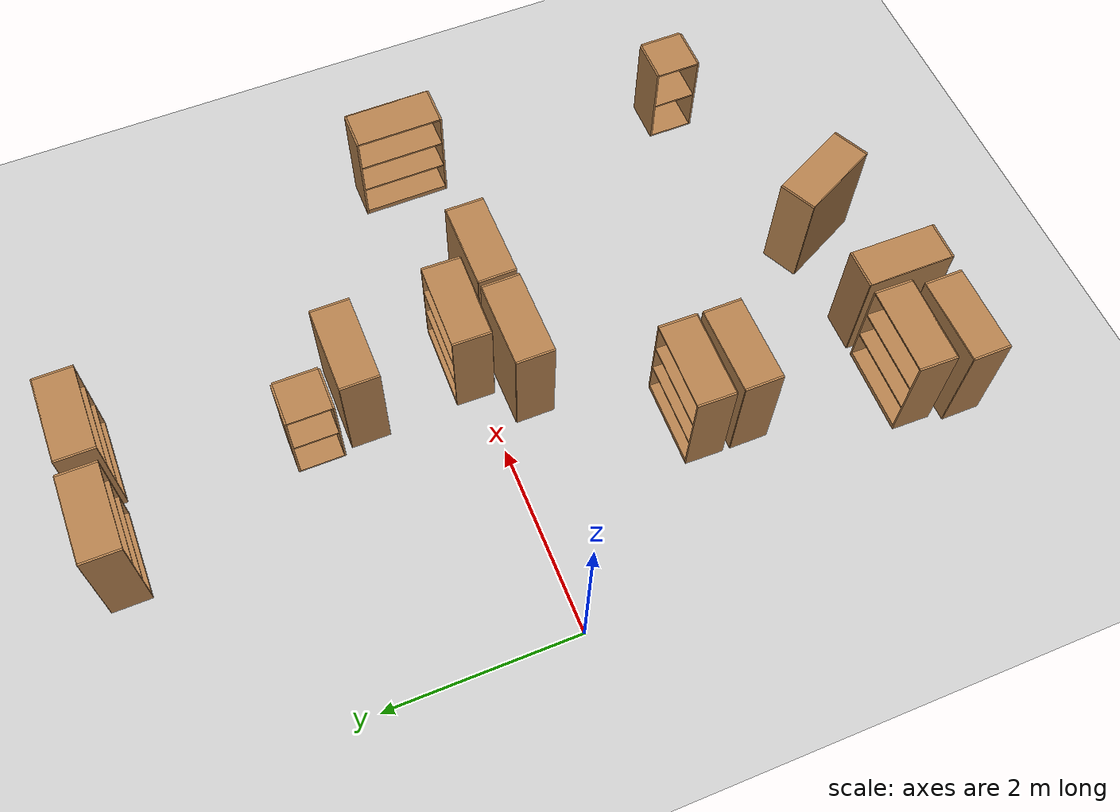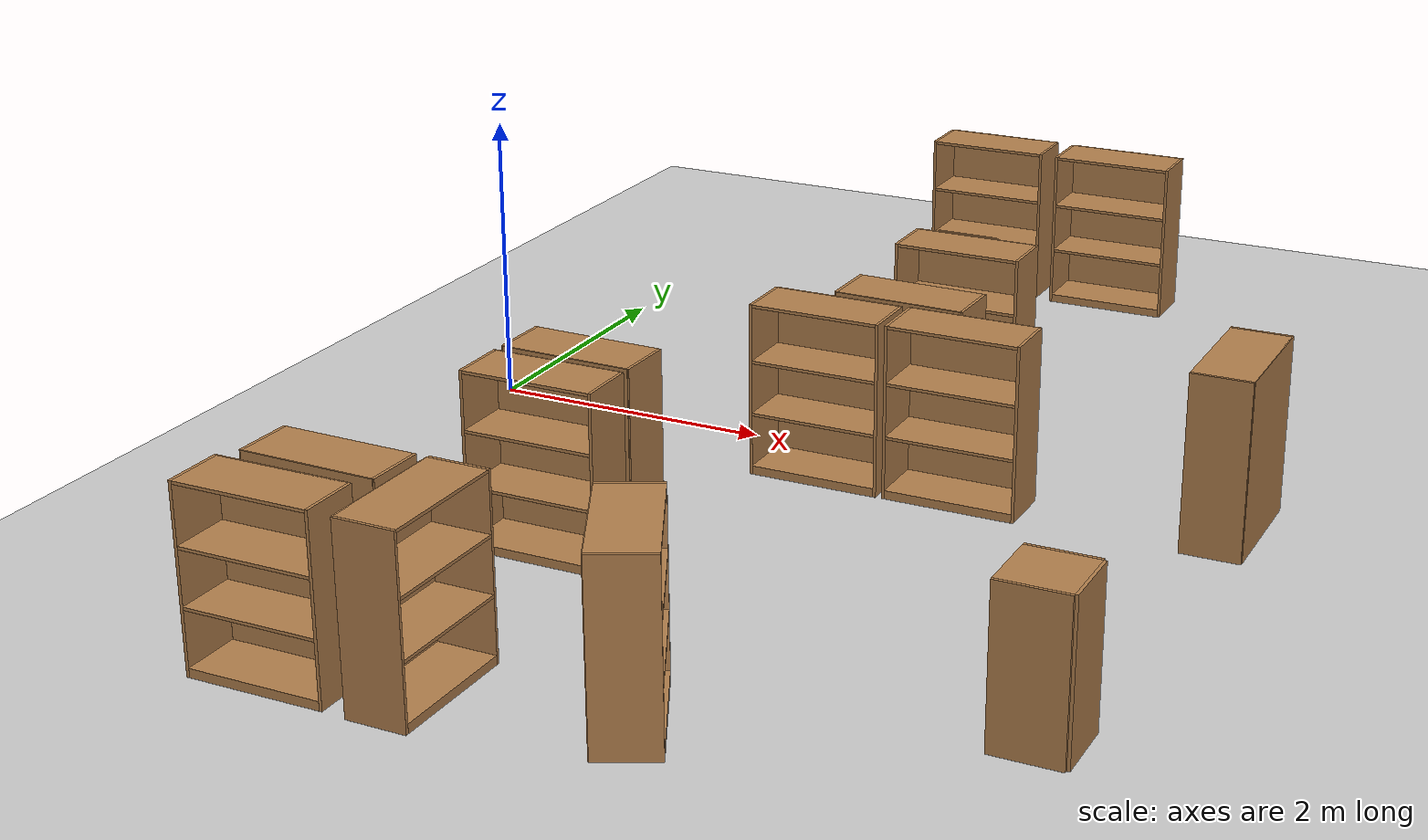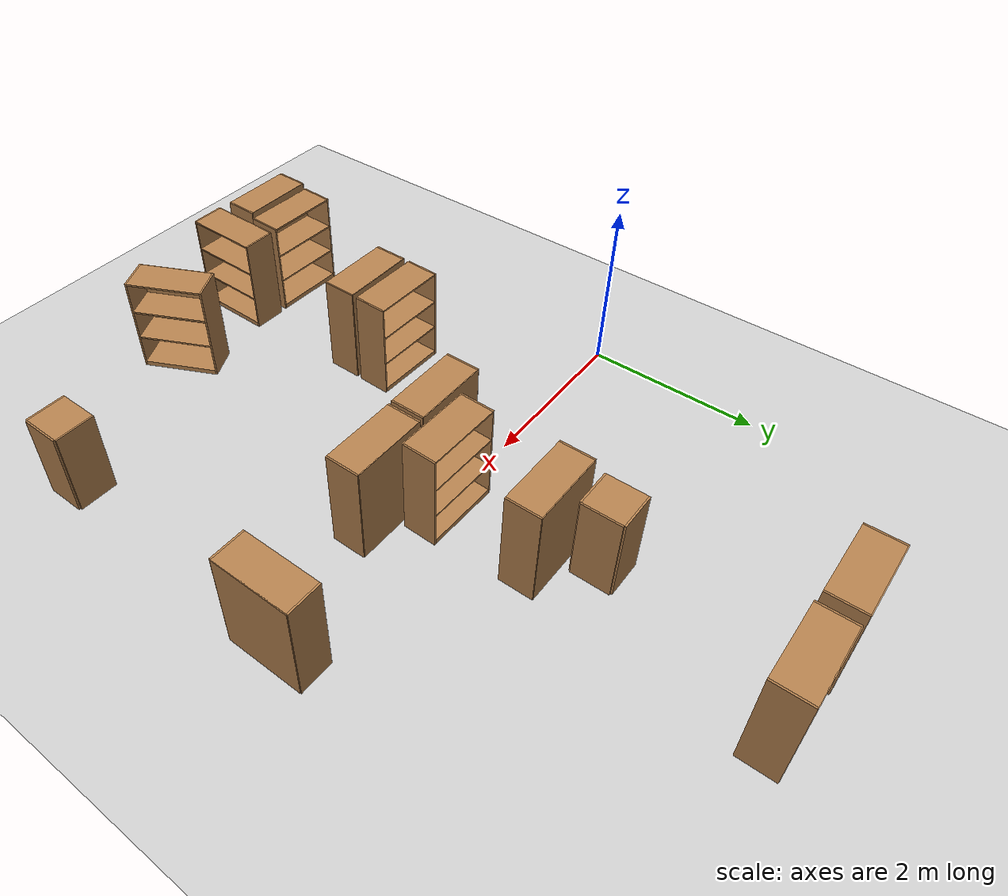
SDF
<sdf version="1.7">
 <world name="default">
  <model name="ground_plane">
   <static>1</static>
   <link name="link">
    <collision name="collision">
     <geometry><plane><normal>0 0 1</normal><size>100 100</size></plane></geometry>
     <surface><friction><ode><mu>100</mu><mu2>50</mu2></ode></friction></surface>
    </collision>
    <visual name="visual">
     <cast_shadows>0</cast_shadows>
     <geometry><plane><normal>0 0 1</normal><size>100 100</size></plane></geometry>
     <material>
      <script><uri>file://media/materials/scripts/gazebo.material</uri><name>Gazebo/Grey</name></script>
     </material>
    </visual>
   </link>
  </model>
  <model name="cabinet">
   <static>1</static>
   <link name="cabinet_bottom_plate">
    <inertial>
     <pose>0 0 -1 0 -0 0</pose>
     <inertia><ixx>2.05</ixx><ixy>0</ixy><ixz>0</ixz><iyy>2.05</iyy><iyz>0</iyz><izz>2.05</izz></inertia>
     <mass>25</mass>
    </inertial>
    <collision name="cabinet_bottom_plate_geom">
     <pose>0 0 0.01 0 -0 0</pose>
     <geometry><box><size>0.45 0.45 0.02</size></box></geometry>
    </collision>
    <visual name="cabinet_bottom_plate_geom_visual">
     <pose>0 0 0.01 0 -0 0</pose>
     <geometry><box><size>0.45 0.45 0.02</size></box></geometry>
     <material>
      <script><uri>file://media/materials/scripts/gazebo.material</uri><name>Gazebo/Wood</name></script>
     </material>
    </visual>
    <collision name="cabinet_bottom_plate_geom_cabinet_back_plate">
     <pose>0.235 0 0.51 0 -0 0</pose>
     <geometry><box><size>0.02 0.45 1.02</size></box></geometry>
    </collision>
    <visual name="cabinet_bottom_plate_geom_cabinet_back_plate_visual">
     <pose>0.235 0 0.51 0 -0 0</pose>
     <geometry><box><size>0.02 0.45 1.02</size></box></geometry>
     <material>
      <script><uri>file://media/materials/scripts/gazebo.material</uri><name>Gazebo/Wood</name></script>
     </material>
    </visual>
    <collision name="cabinet_bottom_plate_geom_cabinet_left_plate">
     <pose>0 0.235 0.51 0 -0 0</pose>
     <geometry><box><size>0.45 0.02 1.02</size></box></geometry>
    </collision>
    <visual name="cabinet_bottom_plate_geom_cabinet_left_plate_visual">
     <pose>0 0.235 0.51 0 -0 0</pose>
     <geometry><box><size>0.45 0.02 1.02</size></box></geometry>
     <material>
      <script><uri>file://media/materials/scripts/gazebo.material</uri><name>Gazebo/Wood</name></script>
     </material>
    </visual>
    <collision name="cabinet_bottom_plate_geom_cabinet_middle_plate">
     <pose>0 0 0.51 0 -0 0</pose>
     <geometry><box><size>0.45 0.45 0.02</size></box></geometry>
    </collision>
    <visual name="cabinet_bottom_plate_geom_cabinet_middle_plate_visual">
     <pose>0 0 0.51 0 -0 0</pose>
     <geometry><box><size>0.45 0.45 0.02</size></box></geometry>
     <material>
      <script><uri>file://media/materials/scripts/gazebo.material</uri><name>Gazebo/Wood</name></script>
     </material>
    </visual>
    <collision name="cabinet_bottom_plate_geom_cabinet_right_plate">
     <pose>0 -0.235 0.51 0 -0 0</pose>
     <geometry><box><size>0.45 0.02 1.02</size></box></geometry>
    </collision>
    <visual name="cabinet_bottom_plate_geom_cabinet_right_plate_visual">
     <pose>0 -0.235 0.51 0 -0 0</pose>
     <geometry><box><size>0.45 0.02 1.02</size></box></geometry>
     <material>
      <script><uri>file://media/materials/scripts/gazebo.material</uri><name>Gazebo/Wood</name></script>
     </material>
    </visual>
    <collision name="cabinet_bottom_plate_geom_cabinet_top_plate">
     <pose>0 0 1.01 0 -0 0</pose>
     <geometry><box><size>0.45 0.45 0.02</size></box></geometry>
    </collision>
    <visual name="cabinet_bottom_plate_geom_cabinet_top_plate_visual">
     <pose>0 0 1.01 0 -0 0</pose>
     <geometry><box><size>0.45 0.45 0.02</size></box></geometry>
     <material>
      <script><uri>file://media/materials/scripts/gazebo.material</uri><name>Gazebo/Wood</name></script>
     </material>
    </visual>
   </link>
   <pose>5.2553 -3.1844 0 0 -0 0</pose>
  </model>
  <model name="bookshelf">
   <static>1</static>
   <link name="link">
    <inertial><mass>1</mass></inertial>
    <collision name="back">
     <pose>0 0.005 0.6 0 -0 0</pose>
     <geometry><box><size>0.9 0.01 1.2</size></box></geometry>
    </collision>
    <visual name="visual1">
     <pose>0 0.005 0.6 0 -0 0</pose>
     <geometry><box><size>0.9 0.01 1.2</size></box></geometry>
     <material>
      <script><uri>file://media/materials/scripts/gazebo.material</uri><name>Gazebo/Wood</name></script>
     </material>
    </visual>
    <collision name="left_side">
     <pose>0.45 -0.195 0.6 0 -0 0</pose>
     <geometry><box><size>0.02 0.4 1.2</size></box></geometry>
    </collision>
    <visual name="visual2">
     <pose>0.45 -0.195 0.6 0 -0 0</pose>
     <geometry><box><size>0.02 0.4 1.2</size></box></geometry>
     <material>
      <script><uri>file://media/materials/scripts/gazebo.material</uri><name>Gazebo/Wood</name></script>
     </material>
    </visual>
    <collision name="right_side">
     <pose>-0.45 -0.195 0.6 0 -0 0</pose>
     <geometry><box><size>0.02 0.4 1.2</size></box></geometry>
    </collision>
    <visual name="visual3">
     <pose>-0.45 -0.195 0.6 0 -0 0</pose>
     <geometry><box><size>0.02 0.4 1.2</size></box></geometry>
     <material>
      <script><uri>file://media/materials/scripts/gazebo.material</uri><name>Gazebo/Wood</name></script>
     </material>
    </visual>
    <collision name="bottom">
     <pose>0 -0.195 0.03 0 -0 0</pose>
     <geometry><box><size>0.88 0.4 0.06</size></box></geometry>
    </collision>
    <visual name="visual4">
     <pose>0 -0.195 0.03 0 -0 0</pose>
     <geometry><box><size>0.88 0.4 0.06</size></box></geometry>
     <material>
      <script><uri>file://media/materials/scripts/gazebo.material</uri><name>Gazebo/Wood</name></script>
     </material>
    </visual>
    <collision name="top">
     <pose>0 -0.195 1.19 0 -0 0</pose>
     <geometry><box><size>0.88 0.4 0.02</size></box></geometry>
    </collision>
    <visual name="visual5">
     <pose>0 -0.195 1.19 0 -0 0</pose>
     <geometry><box><size>0.88 0.4 0.02</size></box></geometry>
     <material>
      <script><uri>file://media/materials/scripts/gazebo.material</uri><name>Gazebo/Wood</name></script>
     </material>
    </visual>
    <collision name="low_shelf">
     <pose>0 -0.195 0.43 0 -0 0</pose>
     <geometry><box><size>0.88 0.4 0.02</size></box></geometry>
    </collision>
    <visual name="visual6">
     <pose>0 -0.195 0.43 0 -0 0</pose>
     <geometry><box><size>0.88 0.4 0.02</size></box></geometry>
     <material>
      <script><uri>file://media/materials/scripts/gazebo.material</uri><name>Gazebo/Wood</name></script>
     </material>
    </visual>
    <collision name="high_shelf">
     <pose>0 -0.195 0.8 0 -0 0</pose>
     <geometry><box><size>0.88 0.4 0.02</size></box></geometry>
    </collision>
    <visual name="visual7">
     <pose>0 -0.195 0.8 0 -0 0</pose>
     <geometry><box><size>0.88 0.4 0.02</size></box></geometry>
     <material>
      <script><uri>file://media/materials/scripts/gazebo.material</uri><name>Gazebo/Wood</name></script>
     </material>
    </visual>
   </link>
   <pose>1.66773 -2.0747 0 0 -0 0</pose>
  </model>
  <model name="bookshelf_1">
   <static>1</static>
   <link name="link">
    <inertial><mass>1</mass></inertial>
    <collision name="back">
     <pose>0 0.005 0.6 0 -0 0</pose>
     <geometry><box><size>0.9 0.01 1.2</size></box></geometry>
    </collision>
    <visual name="visual1">
     <pose>0 0.005 0.6 0 -0 0</pose>
     <geometry><box><size>0.9 0.01 1.2</size></box></geometry>
     <material>
      <script><uri>file://media/materials/scripts/gazebo.material</uri><name>Gazebo/Wood</name></script>
     </material>
    </visual>
    <collision name="left_side">
     <pose>0.45 -0.195 0.6 0 -0 0</pose>
     <geometry><box><size>0.02 0.4 1.2</size></box></geometry>
    </collision>
    <visual name="visual2">
     <pose>0.45 -0.195 0.6 0 -0 0</pose>
     <geometry><box><size>0.02 0.4 1.2</size></box></geometry>
     <material>
      <script><uri>file://media/materials/scripts/gazebo.material</uri><name>Gazebo/Wood</name></script>
     </material>
    </visual>
    <collision name="right_side">
     <pose>-0.45 -0.195 0.6 0 -0 0</pose>
     <geometry><box><size>0.02 0.4 1.2</size></box></geometry>
    </collision>
    <visual name="visual3">
     <pose>-0.45 -0.195 0.6 0 -0 0</pose>
     <geometry><box><size>0.02 0.4 1.2</size></box></geometry>
     <material>
      <script><uri>file://media/materials/scripts/gazebo.material</uri><name>Gazebo/Wood</name></script>
     </material>
    </visual>
    <collision name="bottom">
     <pose>0 -0.195 0.03 0 -0 0</pose>
     <geometry><box><size>0.88 0.4 0.06</size></box></geometry>
    </collision>
    <visual name="visual4">
     <pose>0 -0.195 0.03 0 -0 0</pose>
     <geometry><box><size>0.88 0.4 0.06</size></box></geometry>
     <material>
      <script><uri>file://media/materials/scripts/gazebo.material</uri><name>Gazebo/Wood</name></script>
     </material>
    </visual>
    <collision name="top">
     <pose>0 -0.195 1.19 0 -0 0</pose>
     <geometry><box><size>0.88 0.4 0.02</size></box></geometry>
    </collision>
    <visual name="visual5">
     <pose>0 -0.195 1.19 0 -0 0</pose>
     <geometry><box><size>0.88 0.4 0.02</size></box></geometry>
     <material>
      <script><uri>file://media/materials/scripts/gazebo.material</uri><name>Gazebo/Wood</name></script>
     </material>
    </visual>
    <collision name="low_shelf">
     <pose>0 -0.195 0.43 0 -0 0</pose>
     <geometry><box><size>0.88 0.4 0.02</size></box></geometry>
    </collision>
    <visual name="visual6">
     <pose>0 -0.195 0.43 0 -0 0</pose>
     <geometry><box><size>0.88 0.4 0.02</size></box></geometry>
     <material>
      <script><uri>file://media/materials/scripts/gazebo.material</uri><name>Gazebo/Wood</name></script>
     </material>
    </visual>
    <collision name="high_shelf">
     <pose>0 -0.195 0.8 0 -0 0</pose>
     <geometry><box><size>0.88 0.4 0.02</size></box></geometry>
    </collision>
    <visual name="visual7">
     <pose>0 -0.195 0.8 0 -0 0</pose>
     <geometry><box><size>0.88 0.4 0.02</size></box></geometry>
     <material>
      <script><uri>file://media/materials/scripts/gazebo.material</uri><name>Gazebo/Wood</name></script>
     </material>
    </visual>
   </link>
   <pose>5.60417 -0.118254 0 0 0 -1.56931</pose>
  </model>
  <model name="bookshelf_1_clone">
   <static>1</static>
   <link name="link">
    <inertial><mass>1</mass></inertial>
    <collision name="back">
     <pose>0 0.005 0.6 0 -0 0</pose>
     <geometry><box><size>0.9 0.01 1.2</size></box></geometry>
    </collision>
    <visual name="visual1">
     <pose>0 0.005 0.6 0 -0 0</pose>
     <geometry><box><size>0.9 0.01 1.2</size></box></geometry>
     <material>
      <script><uri>file://media/materials/scripts/gazebo.material</uri><name>Gazebo/Wood</name></script>
     </material>
    </visual>
    <collision name="left_side">
     <pose>0.45 -0.195 0.6 0 -0 0</pose>
     <geometry><box><size>0.02 0.4 1.2</size></box></geometry>
    </collision>
    <visual name="visual2">
     <pose>0.45 -0.195 0.6 0 -0 0</pose>
     <geometry><box><size>0.02 0.4 1.2</size></box></geometry>
     <material>
      <script><uri>file://media/materials/scripts/gazebo.material</uri><name>Gazebo/Wood</name></script>
     </material>
    </visual>
    <collision name="right_side">
     <pose>-0.45 -0.195 0.6 0 -0 0</pose>
     <geometry><box><size>0.02 0.4 1.2</size></box></geometry>
    </collision>
    <visual name="visual3">
     <pose>-0.45 -0.195 0.6 0 -0 0</pose>
     <geometry><box><size>0.02 0.4 1.2</size></box></geometry>
     <material>
      <script><uri>file://media/materials/scripts/gazebo.material</uri><name>Gazebo/Wood</name></script>
     </material>
    </visual>
    <collision name="bottom">
     <pose>0 -0.195 0.03 0 -0 0</pose>
     <geometry><box><size>0.88 0.4 0.06</size></box></geometry>
    </collision>
    <visual name="visual4">
     <pose>0 -0.195 0.03 0 -0 0</pose>
     <geometry><box><size>0.88 0.4 0.06</size></box></geometry>
     <material>
      <script><uri>file://media/materials/scripts/gazebo.material</uri><name>Gazebo/Wood</name></script>
     </material>
    </visual>
    <collision name="top">
     <pose>0 -0.195 1.19 0 -0 0</pose>
     <geometry><box><size>0.88 0.4 0.02</size></box></geometry>
    </collision>
    <visual name="visual5">
     <pose>0 -0.195 1.19 0 -0 0</pose>
     <geometry><box><size>0.88 0.4 0.02</size></box></geometry>
     <material>
      <script><uri>file://media/materials/scripts/gazebo.material</uri><name>Gazebo/Wood</name></script>
     </material>
    </visual>
    <collision name="low_shelf">
     <pose>0 -0.195 0.43 0 -0 0</pose>
     <geometry><box><size>0.88 0.4 0.02</size></box></geometry>
    </collision>
    <visual name="visual6">
     <pose>0 -0.195 0.43 0 -0 0</pose>
     <geometry><box><size>0.88 0.4 0.02</size></box></geometry>
     <material>
      <script><uri>file://media/materials/scripts/gazebo.material</uri><name>Gazebo/Wood</name></script>
     </material>
    </visual>
    <collision name="high_shelf">
     <pose>0 -0.195 0.8 0 -0 0</pose>
     <geometry><box><size>0.88 0.4 0.02</size></box></geometry>
    </collision>
    <visual name="visual7">
     <pose>0 -0.195 0.8 0 -0 0</pose>
     <geometry><box><size>0.88 0.4 0.02</size></box></geometry>
     <material>
      <script><uri>file://media/materials/scripts/gazebo.material</uri><name>Gazebo/Wood</name></script>
     </material>
    </visual>
   </link>
   <pose>1.67113 -1.99457 0 0 -0 3.12003</pose>
  </model>
  <model name="bookshelf_2">
   <static>1</static>
   <link name="link">
    <inertial><mass>1</mass></inertial>
    <collision name="back">
     <pose>0 0.005 0.6 0 -0 0</pose>
     <geometry><box><size>0.9 0.01 1.2</size></box></geometry>
    </collision>
    <visual name="visual1">
     <pose>0 0.005 0.6 0 -0 0</pose>
     <geometry><box><size>0.9 0.01 1.2</size></box></geometry>
     <material>
      <script><uri>file://media/materials/scripts/gazebo.material</uri><name>Gazebo/Wood</name></script>
     </material>
    </visual>
    <collision name="left_side">
     <pose>0.45 -0.195 0.6 0 -0 0</pose>
     <geometry><box><size>0.02 0.4 1.2</size></box></geometry>
    </collision>
    <visual name="visual2">
     <pose>0.45 -0.195 0.6 0 -0 0</pose>
     <geometry><box><size>0.02 0.4 1.2</size></box></geometry>
     <material>
      <script><uri>file://media/materials/scripts/gazebo.material</uri><name>Gazebo/Wood</name></script>
     </material>
    </visual>
    <collision name="right_side">
     <pose>-0.45 -0.195 0.6 0 -0 0</pose>
     <geometry><box><size>0.02 0.4 1.2</size></box></geometry>
    </collision>
    <visual name="visual3">
     <pose>-0.45 -0.195 0.6 0 -0 0</pose>
     <geometry><box><size>0.02 0.4 1.2</size></box></geometry>
     <material>
      <script><uri>file://media/materials/scripts/gazebo.material</uri><name>Gazebo/Wood</name></script>
     </material>
    </visual>
    <collision name="bottom">
     <pose>0 -0.195 0.03 0 -0 0</pose>
     <geometry><box><size>0.88 0.4 0.06</size></box></geometry>
    </collision>
    <visual name="visual4">
     <pose>0 -0.195 0.03 0 -0 0</pose>
     <geometry><box><size>0.88 0.4 0.06</size></box></geometry>
     <material>
      <script><uri>file://media/materials/scripts/gazebo.material</uri><name>Gazebo/Wood</name></script>
     </material>
    </visual>
    <collision name="top">
     <pose>0 -0.195 1.19 0 -0 0</pose>
     <geometry><box><size>0.88 0.4 0.02</size></box></geometry>
    </collision>
    <visual name="visual5">
     <pose>0 -0.195 1.19 0 -0 0</pose>
     <geometry><box><size>0.88 0.4 0.02</size></box></geometry>
     <material>
      <script><uri>file://media/materials/scripts/gazebo.material</uri><name>Gazebo/Wood</name></script>
     </material>
    </visual>
    <collision name="low_shelf">
     <pose>0 -0.195 0.43 0 -0 0</pose>
     <geometry><box><size>0.88 0.4 0.02</size></box></geometry>
    </collision>
    <visual name="visual6">
     <pose>0 -0.195 0.43 0 -0 0</pose>
     <geometry><box><size>0.88 0.4 0.02</size></box></geometry>
     <material>
      <script><uri>file://media/materials/scripts/gazebo.material</uri><name>Gazebo/Wood</name></script>
     </material>
    </visual>
    <collision name="high_shelf">
     <pose>0 -0.195 0.8 0 -0 0</pose>
     <geometry><box><size>0.88 0.4 0.02</size></box></geometry>
    </collision>
    <visual name="visual7">
     <pose>0 -0.195 0.8 0 -0 0</pose>
     <geometry><box><size>0.88 0.4 0.02</size></box></geometry>
     <material>
      <script><uri>file://media/materials/scripts/gazebo.material</uri><name>Gazebo/Wood</name></script>
     </material>
    </visual>
   </link>
   <pose>2.71576 -0.22635 0 0 -0 0</pose>
  </model>
  <model name="bookshelf_3">
   <static>1</static>
   <link name="link">
    <inertial><mass>1</mass></inertial>
    <collision name="back">
     <pose>0 0.005 0.6 0 -0 0</pose>
     <geometry><box><size>0.9 0.01 1.2</size></box></geometry>
    </collision>
    <visual name="visual1">
     <pose>0 0.005 0.6 0 -0 0</pose>
     <geometry><box><size>0.9 0.01 1.2</size></box></geometry>
     <material>
      <script><uri>file://media/materials/scripts/gazebo.material</uri><name>Gazebo/Wood</name></script>
     </material>
    </visual>
    <collision name="left_side">
     <pose>0.45 -0.195 0.6 0 -0 0</pose>
     <geometry><box><size>0.02 0.4 1.2</size></box></geometry>
    </collision>
    <visual name="visual2">
     <pose>0.45 -0.195 0.6 0 -0 0</pose>
     <geometry><box><size>0.02 0.4 1.2</size></box></geometry>
     <material>
      <script><uri>file://media/materials/scripts/gazebo.material</uri><name>Gazebo/Wood</name></script>
     </material>
    </visual>
    <collision name="right_side">
     <pose>-0.45 -0.195 0.6 0 -0 0</pose>
     <geometry><box><size>0.02 0.4 1.2</size></box></geometry>
    </collision>
    <visual name="visual3">
     <pose>-0.45 -0.195 0.6 0 -0 0</pose>
     <geometry><box><size>0.02 0.4 1.2</size></box></geometry>
     <material>
      <script><uri>file://media/materials/scripts/gazebo.material</uri><name>Gazebo/Wood</name></script>
     </material>
    </visual>
    <collision name="bottom">
     <pose>0 -0.195 0.03 0 -0 0</pose>
     <geometry><box><size>0.88 0.4 0.06</size></box></geometry>
    </collision>
    <visual name="visual4">
     <pose>0 -0.195 0.03 0 -0 0</pose>
     <geometry><box><size>0.88 0.4 0.06</size></box></geometry>
     <material>
      <script><uri>file://media/materials/scripts/gazebo.material</uri><name>Gazebo/Wood</name></script>
     </material>
    </visual>
    <collision name="top">
     <pose>0 -0.195 1.19 0 -0 0</pose>
     <geometry><box><size>0.88 0.4 0.02</size></box></geometry>
    </collision>
    <visual name="visual5">
     <pose>0 -0.195 1.19 0 -0 0</pose>
     <geometry><box><size>0.88 0.4 0.02</size></box></geometry>
     <material>
      <script><uri>file://media/materials/scripts/gazebo.material</uri><name>Gazebo/Wood</name></script>
     </material>
    </visual>
    <collision name="low_shelf">
     <pose>0 -0.195 0.43 0 -0 0</pose>
     <geometry><box><size>0.88 0.4 0.02</size></box></geometry>
    </collision>
    <visual name="visual6">
     <pose>0 -0.195 0.43 0 -0 0</pose>
     <geometry><box><size>0.88 0.4 0.02</size></box></geometry>
     <material>
      <script><uri>file://media/materials/scripts/gazebo.material</uri><name>Gazebo/Wood</name></script>
     </material>
    </visual>
    <collision name="high_shelf">
     <pose>0 -0.195 0.8 0 -0 0</pose>
     <geometry><box><size>0.88 0.4 0.02</size></box></geometry>
    </collision>
    <visual name="visual7">
     <pose>0 -0.195 0.8 0 -0 0</pose>
     <geometry><box><size>0.88 0.4 0.02</size></box></geometry>
     <material>
      <script><uri>file://media/materials/scripts/gazebo.material</uri><name>Gazebo/Wood</name></script>
     </material>
    </visual>
   </link>
   <pose>3.67554 -0.21961 0 0 -0 0</pose>
  </model>
  <model name="bookshelf_4">
   <static>1</static>
   <link name="link">
    <inertial><mass>1</mass></inertial>
    <collision name="back">
     <pose>0 0.005 0.6 0 -0 0</pose>
     <geometry><box><size>0.9 0.01 1.2</size></box></geometry>
    </collision>
    <visual name="visual1">
     <pose>0 0.005 0.6 0 -0 0</pose>
     <geometry><box><size>0.9 0.01 1.2</size></box></geometry>
     <material>
      <script><uri>file://media/materials/scripts/gazebo.material</uri><name>Gazebo/Wood</name></script>
     </material>
    </visual>
    <collision name="left_side">
     <pose>0.45 -0.195 0.6 0 -0 0</pose>
     <geometry><box><size>0.02 0.4 1.2</size></box></geometry>
    </collision>
    <visual name="visual2">
     <pose>0.45 -0.195 0.6 0 -0 0</pose>
     <geometry><box><size>0.02 0.4 1.2</size></box></geometry>
     <material>
      <script><uri>file://media/materials/scripts/gazebo.material</uri><name>Gazebo/Wood</name></script>
     </material>
    </visual>
    <collision name="right_side">
     <pose>-0.45 -0.195 0.6 0 -0 0</pose>
     <geometry><box><size>0.02 0.4 1.2</size></box></geometry>
    </collision>
    <visual name="visual3">
     <pose>-0.45 -0.195 0.6 0 -0 0</pose>
     <geometry><box><size>0.02 0.4 1.2</size></box></geometry>
     <material>
      <script><uri>file://media/materials/scripts/gazebo.material</uri><name>Gazebo/Wood</name></script>
     </material>
    </visual>
    <collision name="bottom">
     <pose>0 -0.195 0.03 0 -0 0</pose>
     <geometry><box><size>0.88 0.4 0.06</size></box></geometry>
    </collision>
    <visual name="visual4">
     <pose>0 -0.195 0.03 0 -0 0</pose>
     <geometry><box><size>0.88 0.4 0.06</size></box></geometry>
     <material>
      <script><uri>file://media/materials/scripts/gazebo.material</uri><name>Gazebo/Wood</name></script>
     </material>
    </visual>
    <collision name="top">
     <pose>0 -0.195 1.19 0 -0 0</pose>
     <geometry><box><size>0.88 0.4 0.02</size></box></geometry>
    </collision>
    <visual name="visual5">
     <pose>0 -0.195 1.19 0 -0 0</pose>
     <geometry><box><size>0.88 0.4 0.02</size></box></geometry>
     <material>
      <script><uri>file://media/materials/scripts/gazebo.material</uri><name>Gazebo/Wood</name></script>
     </material>
    </visual>
    <collision name="low_shelf">
     <pose>0 -0.195 0.43 0 -0 0</pose>
     <geometry><box><size>0.88 0.4 0.02</size></box></geometry>
    </collision>
    <visual name="visual6">
     <pose>0 -0.195 0.43 0 -0 0</pose>
     <geometry><box><size>0.88 0.4 0.02</size></box></geometry>
     <material>
      <script><uri>file://media/materials/scripts/gazebo.material</uri><name>Gazebo/Wood</name></script>
     </material>
    </visual>
    <collision name="high_shelf">
     <pose>0 -0.195 0.8 0 -0 0</pose>
     <geometry><box><size>0.88 0.4 0.02</size></box></geometry>
    </collision>
    <visual name="visual7">
     <pose>0 -0.195 0.8 0 -0 0</pose>
     <geometry><box><size>0.88 0.4 0.02</size></box></geometry>
     <material>
      <script><uri>file://media/materials/scripts/gazebo.material</uri><name>Gazebo/Wood</name></script>
     </material>
    </visual>
   </link>
   <pose>3.06317 1.38117 0 0 -0 0</pose>
  </model>
  <model name="bookshelf_11">
   <static>1</static>
   <link name="link">
    <inertial><mass>1</mass></inertial>
    <collision name="back">
     <pose>0 0.005 0.6 0 -0 0</pose>
     <geometry><box><size>0.9 0.01 1.2</size></box></geometry>
    </collision>
    <visual name="visual1">
     <pose>0 0.005 0.6 0 -0 0</pose>
     <geometry><box><size>0.9 0.01 1.2</size></box></geometry>
     <material>
      <script><uri>file://media/materials/scripts/gazebo.material</uri><name>Gazebo/Wood</name></script>
     </material>
    </visual>
    <collision name="left_side">
     <pose>0.45 -0.195 0.6 0 -0 0</pose>
     <geometry><box><size>0.02 0.4 1.2</size></box></geometry>
    </collision>
    <visual name="visual2">
     <pose>0.45 -0.195 0.6 0 -0 0</pose>
     <geometry><box><size>0.02 0.4 1.2</size></box></geometry>
     <material>
      <script><uri>file://media/materials/scripts/gazebo.material</uri><name>Gazebo/Wood</name></script>
     </material>
    </visual>
    <collision name="right_side">
     <pose>-0.45 -0.195 0.6 0 -0 0</pose>
     <geometry><box><size>0.02 0.4 1.2</size></box></geometry>
    </collision>
    <visual name="visual3">
     <pose>-0.45 -0.195 0.6 0 -0 0</pose>
     <geometry><box><size>0.02 0.4 1.2</size></box></geometry>
     <material>
      <script><uri>file://media/materials/scripts/gazebo.material</uri><name>Gazebo/Wood</name></script>
     </material>
    </visual>
    <collision name="bottom">
     <pose>0 -0.195 0.03 0 -0 0</pose>
     <geometry><box><size>0.88 0.4 0.06</size></box></geometry>
    </collision>
    <visual name="visual4">
     <pose>0 -0.195 0.03 0 -0 0</pose>
     <geometry><box><size>0.88 0.4 0.06</size></box></geometry>
     <material>
      <script><uri>file://media/materials/scripts/gazebo.material</uri><name>Gazebo/Wood</name></script>
     </material>
    </visual>
    <collision name="top">
     <pose>0 -0.195 1.19 0 -0 0</pose>
     <geometry><box><size>0.88 0.4 0.02</size></box></geometry>
    </collision>
    <visual name="visual5">
     <pose>0 -0.195 1.19 0 -0 0</pose>
     <geometry><box><size>0.88 0.4 0.02</size></box></geometry>
     <material>
      <script><uri>file://media/materials/scripts/gazebo.material</uri><name>Gazebo/Wood</name></script>
     </material>
    </visual>
    <collision name="low_shelf">
     <pose>0 -0.195 0.43 0 -0 0</pose>
     <geometry><box><size>0.88 0.4 0.02</size></box></geometry>
    </collision>
    <visual name="visual6">
     <pose>0 -0.195 0.43 0 -0 0</pose>
     <geometry><box><size>0.88 0.4 0.02</size></box></geometry>
     <material>
      <script><uri>file://media/materials/scripts/gazebo.material</uri><name>Gazebo/Wood</name></script>
     </material>
    </visual>
    <collision name="high_shelf">
     <pose>0 -0.195 0.8 0 -0 0</pose>
     <geometry><box><size>0.88 0.4 0.02</size></box></geometry>
    </collision>
    <visual name="visual7">
     <pose>0 -0.195 0.8 0 -0 0</pose>
     <geometry><box><size>0.88 0.4 0.02</size></box></geometry>
     <material>
      <script><uri>file://media/materials/scripts/gazebo.material</uri><name>Gazebo/Wood</name></script>
     </material>
    </visual>
   </link>
   <pose>1.16592 -4.18389 0 0 -0 0</pose>
  </model>
  <model name="bookshelf_12">
   <static>1</static>
   <link name="link">
    <inertial><mass>1</mass></inertial>
    <collision name="back">
     <pose>0 0.005 0.6 0 -0 0</pose>
     <geometry><box><size>0.9 0.01 1.2</size></box></geometry>
    </collision>
    <visual name="visual1">
     <pose>0 0.005 0.6 0 -0 0</pose>
     <geometry><box><size>0.9 0.01 1.2</size></box></geometry>
     <material>
      <script><uri>file://media/materials/scripts/gazebo.material</uri><name>Gazebo/Wood</name></script>
     </material>
    </visual>
    <collision name="left_side">
     <pose>0.45 -0.195 0.6 0 -0 0</pose>
     <geometry><box><size>0.02 0.4 1.2</size></box></geometry>
    </collision>
    <visual name="visual2">
     <pose>0.45 -0.195 0.6 0 -0 0</pose>
     <geometry><box><size>0.02 0.4 1.2</size></box></geometry>
     <material>
      <script><uri>file://media/materials/scripts/gazebo.material</uri><name>Gazebo/Wood</name></script>
     </material>
    </visual>
    <collision name="right_side">
     <pose>-0.45 -0.195 0.6 0 -0 0</pose>
     <geometry><box><size>0.02 0.4 1.2</size></box></geometry>
    </collision>
    <visual name="visual3">
     <pose>-0.45 -0.195 0.6 0 -0 0</pose>
     <geometry><box><size>0.02 0.4 1.2</size></box></geometry>
     <material>
      <script><uri>file://media/materials/scripts/gazebo.material</uri><name>Gazebo/Wood</name></script>
     </material>
    </visual>
    <collision name="bottom">
     <pose>0 -0.195 0.03 0 -0 0</pose>
     <geometry><box><size>0.88 0.4 0.06</size></box></geometry>
    </collision>
    <visual name="visual4">
     <pose>0 -0.195 0.03 0 -0 0</pose>
     <geometry><box><size>0.88 0.4 0.06</size></box></geometry>
     <material>
      <script><uri>file://media/materials/scripts/gazebo.material</uri><name>Gazebo/Wood</name></script>
     </material>
    </visual>
    <collision name="top">
     <pose>0 -0.195 1.19 0 -0 0</pose>
     <geometry><box><size>0.88 0.4 0.02</size></box></geometry>
    </collision>
    <visual name="visual5">
     <pose>0 -0.195 1.19 0 -0 0</pose>
     <geometry><box><size>0.88 0.4 0.02</size></box></geometry>
     <material>
      <script><uri>file://media/materials/scripts/gazebo.material</uri><name>Gazebo/Wood</name></script>
     </material>
    </visual>
    <collision name="low_shelf">
     <pose>0 -0.195 0.43 0 -0 0</pose>
     <geometry><box><size>0.88 0.4 0.02</size></box></geometry>
    </collision>
    <visual name="visual6">
     <pose>0 -0.195 0.43 0 -0 0</pose>
     <geometry><box><size>0.88 0.4 0.02</size></box></geometry>
     <material>
      <script><uri>file://media/materials/scripts/gazebo.material</uri><name>Gazebo/Wood</name></script>
     </material>
    </visual>
    <collision name="high_shelf">
     <pose>0 -0.195 0.8 0 -0 0</pose>
     <geometry><box><size>0.88 0.4 0.02</size></box></geometry>
    </collision>
    <visual name="visual7">
     <pose>0 -0.195 0.8 0 -0 0</pose>
     <geometry><box><size>0.88 0.4 0.02</size></box></geometry>
     <material>
      <script><uri>file://media/materials/scripts/gazebo.material</uri><name>Gazebo/Wood</name></script>
     </material>
    </visual>
   </link>
   <pose>3.32228 3.98277 0 0 -0 0</pose>
  </model>
  <model name="bookshelf_13">
   <static>1</static>
   <link name="link">
    <inertial><mass>1</mass></inertial>
    <collision name="back">
     <pose>0 0.005 0.6 0 -0 0</pose>
     <geometry><box><size>0.9 0.01 1.2</size></box></geometry>
    </collision>
    <visual name="visual1">
     <pose>0 0.005 0.6 0 -0 0</pose>
     <geometry><box><size>0.9 0.01 1.2</size></box></geometry>
     <material>
      <script><uri>file://media/materials/scripts/gazebo.material</uri><name>Gazebo/Wood</name></script>
     </material>
    </visual>
    <collision name="left_side">
     <pose>0.45 -0.195 0.6 0 -0 0</pose>
     <geometry><box><size>0.02 0.4 1.2</size></box></geometry>
    </collision>
    <visual name="visual2">
     <pose>0.45 -0.195 0.6 0 -0 0</pose>
     <geometry><box><size>0.02 0.4 1.2</size></box></geometry>
     <material>
      <script><uri>file://media/materials/scripts/gazebo.material</uri><name>Gazebo/Wood</name></script>
     </material>
    </visual>
    <collision name="right_side">
     <pose>-0.45 -0.195 0.6 0 -0 0</pose>
     <geometry><box><size>0.02 0.4 1.2</size></box></geometry>
    </collision>
    <visual name="visual3">
     <pose>-0.45 -0.195 0.6 0 -0 0</pose>
     <geometry><box><size>0.02 0.4 1.2</size></box></geometry>
     <material>
      <script><uri>file://media/materials/scripts/gazebo.material</uri><name>Gazebo/Wood</name></script>
     </material>
    </visual>
    <collision name="bottom">
     <pose>0 -0.195 0.03 0 -0 0</pose>
     <geometry><box><size>0.88 0.4 0.06</size></box></geometry>
    </collision>
    <visual name="visual4">
     <pose>0 -0.195 0.03 0 -0 0</pose>
     <geometry><box><size>0.88 0.4 0.06</size></box></geometry>
     <material>
      <script><uri>file://media/materials/scripts/gazebo.material</uri><name>Gazebo/Wood</name></script>
     </material>
    </visual>
    <collision name="top">
     <pose>0 -0.195 1.19 0 -0 0</pose>
     <geometry><box><size>0.88 0.4 0.02</size></box></geometry>
    </collision>
    <visual name="visual5">
     <pose>0 -0.195 1.19 0 -0 0</pose>
     <geometry><box><size>0.88 0.4 0.02</size></box></geometry>
     <material>
      <script><uri>file://media/materials/scripts/gazebo.material</uri><name>Gazebo/Wood</name></script>
     </material>
    </visual>
    <collision name="low_shelf">
     <pose>0 -0.195 0.43 0 -0 0</pose>
     <geometry><box><size>0.88 0.4 0.02</size></box></geometry>
    </collision>
    <visual name="visual6">
     <pose>0 -0.195 0.43 0 -0 0</pose>
     <geometry><box><size>0.88 0.4 0.02</size></box></geometry>
     <material>
      <script><uri>file://media/materials/scripts/gazebo.material</uri><name>Gazebo/Wood</name></script>
     </material>
    </visual>
    <collision name="high_shelf">
     <pose>0 -0.195 0.8 0 -0 0</pose>
     <geometry><box><size>0.88 0.4 0.02</size></box></geometry>
    </collision>
    <visual name="visual7">
     <pose>0 -0.195 0.8 0 -0 0</pose>
     <geometry><box><size>0.88 0.4 0.02</size></box></geometry>
     <material>
      <script><uri>file://media/materials/scripts/gazebo.material</uri><name>Gazebo/Wood</name></script>
     </material>
    </visual>
   </link>
   <pose>2.28216 4.00236 0 0 -0 0</pose>
  </model>
  <model name="bookshelf_1_clone_clone_2">
   <static>1</static>
   <link name="link">
    <inertial><mass>1</mass></inertial>
    <collision name="back">
     <pose>0 0.005 0.6 0 -0 0</pose>
     <geometry><box><size>0.9 0.01 1.2</size></box></geometry>
    </collision>
    <visual name="visual1">
     <pose>0 0.005 0.6 0 -0 0</pose>
     <geometry><box><size>0.9 0.01 1.2</size></box></geometry>
     <material>
      <script><uri>file://media/materials/scripts/gazebo.material</uri><name>Gazebo/Wood</name></script>
     </material>
    </visual>
    <collision name="left_side">
     <pose>0.45 -0.195 0.6 0 -0 0</pose>
     <geometry><box><size>0.02 0.4 1.2</size></box></geometry>
    </collision>
    <visual name="visual2">
     <pose>0.45 -0.195 0.6 0 -0 0</pose>
     <geometry><box><size>0.02 0.4 1.2</size></box></geometry>
     <material>
      <script><uri>file://media/materials/scripts/gazebo.material</uri><name>Gazebo/Wood</name></script>
     </material>
    </visual>
    <collision name="right_side">
     <pose>-0.45 -0.195 0.6 0 -0 0</pose>
     <geometry><box><size>0.02 0.4 1.2</size></box></geometry>
    </collision>
    <visual name="visual3">
     <pose>-0.45 -0.195 0.6 0 -0 0</pose>
     <geometry><box><size>0.02 0.4 1.2</size></box></geometry>
     <material>
      <script><uri>file://media/materials/scripts/gazebo.material</uri><name>Gazebo/Wood</name></script>
     </material>
    </visual>
    <collision name="bottom">
     <pose>0 -0.195 0.03 0 -0 0</pose>
     <geometry><box><size>0.88 0.4 0.06</size></box></geometry>
    </collision>
    <visual name="visual4">
     <pose>0 -0.195 0.03 0 -0 0</pose>
     <geometry><box><size>0.88 0.4 0.06</size></box></geometry>
     <material>
      <script><uri>file://media/materials/scripts/gazebo.material</uri><name>Gazebo/Wood</name></script>
     </material>
    </visual>
    <collision name="top">
     <pose>0 -0.195 1.19 0 -0 0</pose>
     <geometry><box><size>0.88 0.4 0.02</size></box></geometry>
    </collision>
    <visual name="visual5">
     <pose>0 -0.195 1.19 0 -0 0</pose>
     <geometry><box><size>0.88 0.4 0.02</size></box></geometry>
     <material>
      <script><uri>file://media/materials/scripts/gazebo.material</uri><name>Gazebo/Wood</name></script>
     </material>
    </visual>
    <collision name="low_shelf">
     <pose>0 -0.195 0.43 0 -0 0</pose>
     <geometry><box><size>0.88 0.4 0.02</size></box></geometry>
    </collision>
    <visual name="visual6">
     <pose>0 -0.195 0.43 0 -0 0</pose>
     <geometry><box><size>0.88 0.4 0.02</size></box></geometry>
     <material>
      <script><uri>file://media/materials/scripts/gazebo.material</uri><name>Gazebo/Wood</name></script>
     </material>
    </visual>
    <collision name="high_shelf">
     <pose>0 -0.195 0.8 0 -0 0</pose>
     <geometry><box><size>0.88 0.4 0.02</size></box></geometry>
    </collision>
    <visual name="visual7">
     <pose>0 -0.195 0.8 0 -0 0</pose>
     <geometry><box><size>0.88 0.4 0.02</size></box></geometry>
     <material>
      <script><uri>file://media/materials/scripts/gazebo.material</uri><name>Gazebo/Wood</name></script>
     </material>
    </visual>
   </link>
   <pose>3.11001 -0.142867 0 0 -0 3.12003</pose>
  </model>
  <model name="bookshelf_1_clone_clone_3">
   <static>1</static>
   <link name="link">
    <inertial><mass>1</mass></inertial>
    <collision name="back">
     <pose>0 0.005 0.6 0 -0 0</pose>
     <geometry><box><size>0.9 0.01 1.2</size></box></geometry>
    </collision>
    <visual name="visual1">
     <pose>0 0.005 0.6 0 -0 0</pose>
     <geometry><box><size>0.9 0.01 1.2</size></box></geometry>
     <material>
      <script><uri>file://media/materials/scripts/gazebo.material</uri><name>Gazebo/Wood</name></script>
     </material>
    </visual>
    <collision name="left_side">
     <pose>0.45 -0.195 0.6 0 -0 0</pose>
     <geometry><box><size>0.02 0.4 1.2</size></box></geometry>
    </collision>
    <visual name="visual2">
     <pose>0.45 -0.195 0.6 0 -0 0</pose>
     <geometry><box><size>0.02 0.4 1.2</size></box></geometry>
     <material>
      <script><uri>file://media/materials/scripts/gazebo.material</uri><name>Gazebo/Wood</name></script>
     </material>
    </visual>
    <collision name="right_side">
     <pose>-0.45 -0.195 0.6 0 -0 0</pose>
     <geometry><box><size>0.02 0.4 1.2</size></box></geometry>
    </collision>
    <visual name="visual3">
     <pose>-0.45 -0.195 0.6 0 -0 0</pose>
     <geometry><box><size>0.02 0.4 1.2</size></box></geometry>
     <material>
      <script><uri>file://media/materials/scripts/gazebo.material</uri><name>Gazebo/Wood</name></script>
     </material>
    </visual>
    <collision name="bottom">
     <pose>0 -0.195 0.03 0 -0 0</pose>
     <geometry><box><size>0.88 0.4 0.06</size></box></geometry>
    </collision>
    <visual name="visual4">
     <pose>0 -0.195 0.03 0 -0 0</pose>
     <geometry><box><size>0.88 0.4 0.06</size></box></geometry>
     <material>
      <script><uri>file://media/materials/scripts/gazebo.material</uri><name>Gazebo/Wood</name></script>
     </material>
    </visual>
    <collision name="top">
     <pose>0 -0.195 1.19 0 -0 0</pose>
     <geometry><box><size>0.88 0.4 0.02</size></box></geometry>
    </collision>
    <visual name="visual5">
     <pose>0 -0.195 1.19 0 -0 0</pose>
     <geometry><box><size>0.88 0.4 0.02</size></box></geometry>
     <material>
      <script><uri>file://media/materials/scripts/gazebo.material</uri><name>Gazebo/Wood</name></script>
     </material>
    </visual>
    <collision name="low_shelf">
     <pose>0 -0.195 0.43 0 -0 0</pose>
     <geometry><box><size>0.88 0.4 0.02</size></box></geometry>
    </collision>
    <visual name="visual6">
     <pose>0 -0.195 0.43 0 -0 0</pose>
     <geometry><box><size>0.88 0.4 0.02</size></box></geometry>
     <material>
      <script><uri>file://media/materials/scripts/gazebo.material</uri><name>Gazebo/Wood</name></script>
     </material>
    </visual>
    <collision name="high_shelf">
     <pose>0 -0.195 0.8 0 -0 0</pose>
     <geometry><box><size>0.88 0.4 0.02</size></box></geometry>
    </collision>
    <visual name="visual7">
     <pose>0 -0.195 0.8 0 -0 0</pose>
     <geometry><box><size>0.88 0.4 0.02</size></box></geometry>
     <material>
      <script><uri>file://media/materials/scripts/gazebo.material</uri><name>Gazebo/Wood</name></script>
     </material>
    </visual>
   </link>
   <pose>1.24582 -4.06672 0 0 -0 3.12003</pose>
  </model>
  <model name="bookshelf_1_clone_7">
   <static>1</static>
   <link name="link">
    <inertial><mass>1</mass></inertial>
    <collision name="back">
     <pose>0 0.005 0.6 0 -0 0</pose>
     <geometry><box><size>0.9 0.01 1.2</size></box></geometry>
    </collision>
    <visual name="visual1">
     <pose>0 0.005 0.6 0 -0 0</pose>
     <geometry><box><size>0.9 0.01 1.2</size></box></geometry>
     <material>
      <script><uri>file://media/materials/scripts/gazebo.material</uri><name>Gazebo/Wood</name></script>
     </material>
    </visual>
    <collision name="left_side">
     <pose>0.45 -0.195 0.6 0 -0 0</pose>
     <geometry><box><size>0.02 0.4 1.2</size></box></geometry>
    </collision>
    <visual name="visual2">
     <pose>0.45 -0.195 0.6 0 -0 0</pose>
     <geometry><box><size>0.02 0.4 1.2</size></box></geometry>
     <material>
      <script><uri>file://media/materials/scripts/gazebo.material</uri><name>Gazebo/Wood</name></script>
     </material>
    </visual>
    <collision name="right_side">
     <pose>-0.45 -0.195 0.6 0 -0 0</pose>
     <geometry><box><size>0.02 0.4 1.2</size></box></geometry>
    </collision>
    <visual name="visual3">
     <pose>-0.45 -0.195 0.6 0 -0 0</pose>
     <geometry><box><size>0.02 0.4 1.2</size></box></geometry>
     <material>
      <script><uri>file://media/materials/scripts/gazebo.material</uri><name>Gazebo/Wood</name></script>
     </material>
    </visual>
    <collision name="bottom">
     <pose>0 -0.195 0.03 0 -0 0</pose>
     <geometry><box><size>0.88 0.4 0.06</size></box></geometry>
    </collision>
    <visual name="visual4">
     <pose>0 -0.195 0.03 0 -0 0</pose>
     <geometry><box><size>0.88 0.4 0.06</size></box></geometry>
     <material>
      <script><uri>file://media/materials/scripts/gazebo.material</uri><name>Gazebo/Wood</name></script>
     </material>
    </visual>
    <collision name="top">
     <pose>0 -0.195 1.19 0 -0 0</pose>
     <geometry><box><size>0.88 0.4 0.02</size></box></geometry>
    </collision>
    <visual name="visual5">
     <pose>0 -0.195 1.19 0 -0 0</pose>
     <geometry><box><size>0.88 0.4 0.02</size></box></geometry>
     <material>
      <script><uri>file://media/materials/scripts/gazebo.material</uri><name>Gazebo/Wood</name></script>
     </material>
    </visual>
    <collision name="low_shelf">
     <pose>0 -0.195 0.43 0 -0 0</pose>
     <geometry><box><size>0.88 0.4 0.02</size></box></geometry>
    </collision>
    <visual name="visual6">
     <pose>0 -0.195 0.43 0 -0 0</pose>
     <geometry><box><size>0.88 0.4 0.02</size></box></geometry>
     <material>
      <script><uri>file://media/materials/scripts/gazebo.material</uri><name>Gazebo/Wood</name></script>
     </material>
    </visual>
    <collision name="high_shelf">
     <pose>0 -0.195 0.8 0 -0 0</pose>
     <geometry><box><size>0.88 0.4 0.02</size></box></geometry>
    </collision>
    <visual name="visual7">
     <pose>0 -0.195 0.8 0 -0 0</pose>
     <geometry><box><size>0.88 0.4 0.02</size></box></geometry>
     <material>
      <script><uri>file://media/materials/scripts/gazebo.material</uri><name>Gazebo/Wood</name></script>
     </material>
    </visual>
   </link>
   <pose>1.79344 -4.13464 0 0 -0 1.56314</pose>
  </model>
  <model name="bookshelf_1_clone_9_clone_1_clone">
   <static>1</static>
   <link name="link">
    <inertial><mass>1</mass></inertial>
    <collision name="back">
     <pose>0 0.005 0.6 0 -0 0</pose>
     <geometry><box><size>0.9 0.01 1.2</size></box></geometry>
    </collision>
    <visual name="visual1">
     <pose>0 0.005 0.6 0 -0 0</pose>
     <geometry><box><size>0.9 0.01 1.2</size></box></geometry>
     <material>
      <script><uri>file://media/materials/scripts/gazebo.material</uri><name>Gazebo/Wood</name></script>
     </material>
    </visual>
    <collision name="left_side">
     <pose>0.45 -0.195 0.6 0 -0 0</pose>
     <geometry><box><size>0.02 0.4 1.2</size></box></geometry>
    </collision>
    <visual name="visual2">
     <pose>0.45 -0.195 0.6 0 -0 0</pose>
     <geometry><box><size>0.02 0.4 1.2</size></box></geometry>
     <material>
      <script><uri>file://media/materials/scripts/gazebo.material</uri><name>Gazebo/Wood</name></script>
     </material>
    </visual>
    <collision name="right_side">
     <pose>-0.45 -0.195 0.6 0 -0 0</pose>
     <geometry><box><size>0.02 0.4 1.2</size></box></geometry>
    </collision>
    <visual name="visual3">
     <pose>-0.45 -0.195 0.6 0 -0 0</pose>
     <geometry><box><size>0.02 0.4 1.2</size></box></geometry>
     <material>
      <script><uri>file://media/materials/scripts/gazebo.material</uri><name>Gazebo/Wood</name></script>
     </material>
    </visual>
    <collision name="bottom">
     <pose>0 -0.195 0.03 0 -0 0</pose>
     <geometry><box><size>0.88 0.4 0.06</size></box></geometry>
    </collision>
    <visual name="visual4">
     <pose>0 -0.195 0.03 0 -0 0</pose>
     <geometry><box><size>0.88 0.4 0.06</size></box></geometry>
     <material>
      <script><uri>file://media/materials/scripts/gazebo.material</uri><name>Gazebo/Wood</name></script>
     </material>
    </visual>
    <collision name="top">
     <pose>0 -0.195 1.19 0 -0 0</pose>
     <geometry><box><size>0.88 0.4 0.02</size></box></geometry>
    </collision>
    <visual name="visual5">
     <pose>0 -0.195 1.19 0 -0 0</pose>
     <geometry><box><size>0.88 0.4 0.02</size></box></geometry>
     <material>
      <script><uri>file://media/materials/scripts/gazebo.material</uri><name>Gazebo/Wood</name></script>
     </material>
    </visual>
    <collision name="low_shelf">
     <pose>0 -0.195 0.43 0 -0 0</pose>
     <geometry><box><size>0.88 0.4 0.02</size></box></geometry>
    </collision>
    <visual name="visual6">
     <pose>0 -0.195 0.43 0 -0 0</pose>
     <geometry><box><size>0.88 0.4 0.02</size></box></geometry>
     <material>
      <script><uri>file://media/materials/scripts/gazebo.material</uri><name>Gazebo/Wood</name></script>
     </material>
    </visual>
    <collision name="high_shelf">
     <pose>0 -0.195 0.8 0 -0 0</pose>
     <geometry><box><size>0.88 0.4 0.02</size></box></geometry>
    </collision>
    <visual name="visual7">
     <pose>0 -0.195 0.8 0 -0 0</pose>
     <geometry><box><size>0.88 0.4 0.02</size></box></geometry>
     <material>
      <script><uri>file://media/materials/scripts/gazebo.material</uri><name>Gazebo/Wood</name></script>
     </material>
    </visual>
   </link>
   <pose>3 -4 0 -0.001444 -0.002937 2.02914</pose>
  </model>
  <model name="cabinet_clone_2">
   <static>1</static>
   <link name="cabinet_bottom_plate">
    <inertial>
     <pose>0 0 -1 0 -0 0</pose>
     <inertia><ixx>2.05</ixx><ixy>0</ixy><ixz>0</ixz><iyy>2.05</iyy><iyz>0</iyz><izz>2.05</izz></inertia>
     <mass>25</mass>
    </inertial>
    <collision name="cabinet_bottom_plate_geom">
     <pose>0 0 0.01 0 -0 0</pose>
     <geometry><box><size>0.45 0.45 0.02</size></box></geometry>
    </collision>
    <visual name="cabinet_bottom_plate_geom_visual">
     <pose>0 0 0.01 0 -0 0</pose>
     <geometry><box><size>0.45 0.45 0.02</size></box></geometry>
     <material>
      <script><uri>file://media/materials/scripts/gazebo.material</uri><name>Gazebo/Wood</name></script>
     </material>
    </visual>
    <collision name="cabinet_bottom_plate_geom_cabinet_back_plate">
     <pose>0.235 0 0.51 0 -0 0</pose>
     <geometry><box><size>0.02 0.45 1.02</size></box></geometry>
    </collision>
    <visual name="cabinet_bottom_plate_geom_cabinet_back_plate_visual">
     <pose>0.235 0 0.51 0 -0 0</pose>
     <geometry><box><size>0.02 0.45 1.02</size></box></geometry>
     <material>
      <script><uri>file://media/materials/scripts/gazebo.material</uri><name>Gazebo/Wood</name></script>
     </material>
    </visual>
    <collision name="cabinet_bottom_plate_geom_cabinet_left_plate">
     <pose>0 0.235 0.51 0 -0 0</pose>
     <geometry><box><size>0.45 0.02 1.02</size></box></geometry>
    </collision>
    <visual name="cabinet_bottom_plate_geom_cabinet_left_plate_visual">
     <pose>0 0.235 0.51 0 -0 0</pose>
     <geometry><box><size>0.45 0.02 1.02</size></box></geometry>
     <material>
      <script><uri>file://media/materials/scripts/gazebo.material</uri><name>Gazebo/Wood</name></script>
     </material>
    </visual>
    <collision name="cabinet_bottom_plate_geom_cabinet_middle_plate">
     <pose>0 0 0.51 0 -0 0</pose>
     <geometry><box><size>0.45 0.45 0.02</size></box></geometry>
    </collision>
    <visual name="cabinet_bottom_plate_geom_cabinet_middle_plate_visual">
     <pose>0 0 0.51 0 -0 0</pose>
     <geometry><box><size>0.45 0.45 0.02</size></box></geometry>
     <material>
      <script><uri>file://media/materials/scripts/gazebo.material</uri><name>Gazebo/Wood</name></script>
     </material>
    </visual>
    <collision name="cabinet_bottom_plate_geom_cabinet_right_plate">
     <pose>0 -0.235 0.51 0 -0 0</pose>
     <geometry><box><size>0.45 0.02 1.02</size></box></geometry>
    </collision>
    <visual name="cabinet_bottom_plate_geom_cabinet_right_plate_visual">
     <pose>0 -0.235 0.51 0 -0 0</pose>
     <geometry><box><size>0.45 0.02 1.02</size></box></geometry>
     <material>
      <script><uri>file://media/materials/scripts/gazebo.material</uri><name>Gazebo/Wood</name></script>
     </material>
    </visual>
    <collision name="cabinet_bottom_plate_geom_cabinet_top_plate">
     <pose>0 0 1.01 0 -0 0</pose>
     <geometry><box><size>0.45 0.45 0.02</size></box></geometry>
    </collision>
    <visual name="cabinet_bottom_plate_geom_cabinet_top_plate_visual">
     <pose>0 0 1.01 0 -0 0</pose>
     <geometry><box><size>0.45 0.45 0.02</size></box></geometry>
     <material>
      <script><uri>file://media/materials/scripts/gazebo.material</uri><name>Gazebo/Wood</name></script>
     </material>
    </visual>
   </link>
   <pose>2.77226 1.71273 0 0 -0 0</pose>
  </model>
 </world>
</sdf>
